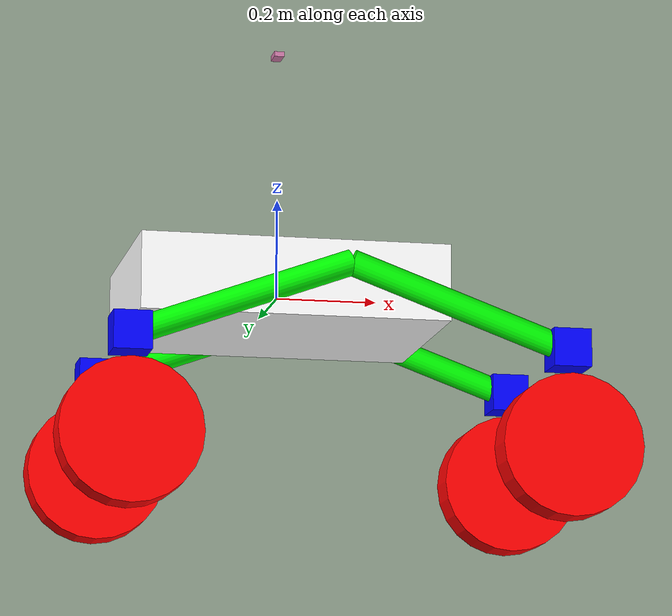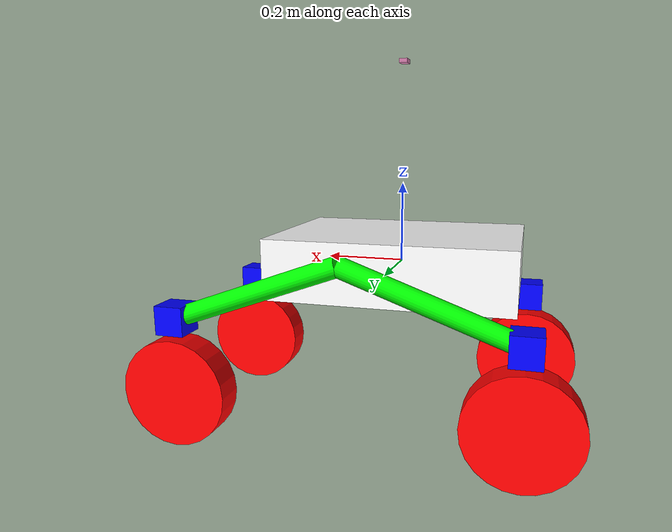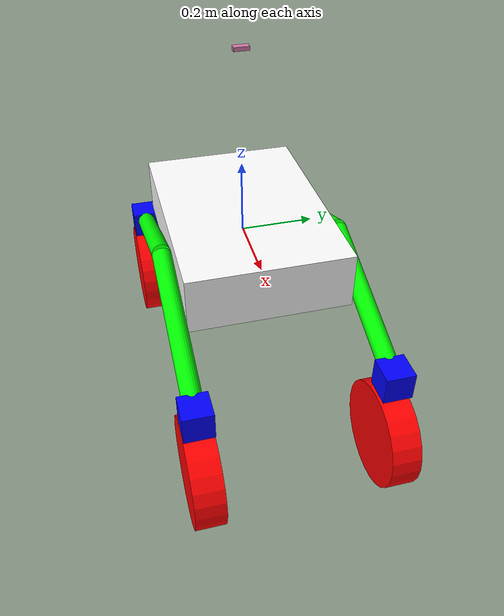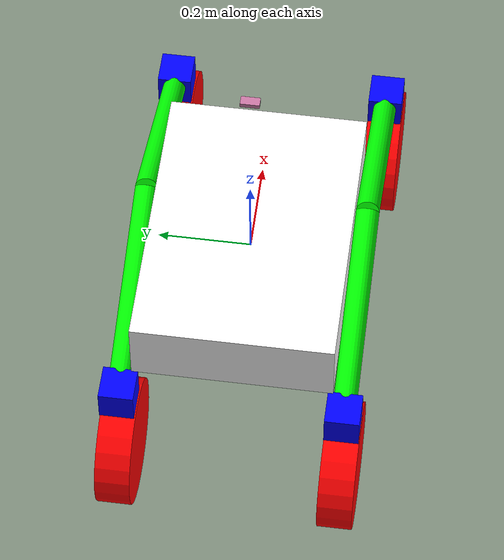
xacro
<?xml version="1.0"?>
<robot name="rover" xmlns:xacro="http://ros.org/wiki/xacro">

  <xacro:include filename="$(find rover_description)/urdf/include/robot_parts/chassis.xacro" />
  <xacro:include filename="$(find rover_description)/urdf/include/robot_parts/legs.xacro" />
  <xacro:include filename="$(find rover_description)/urdf/include/robot_parts/swerves.xacro" />
  <xacro:include filename="$(find rover_description)/urdf/include/robot_parts/wheels.xacro" />

  <xacro:include filename="$(find rover_description)/urdf/include/ros2_control/swerve_gazebo_ros2_control.xacro" />

  <xacro:include filename="$(find rover_description)/urdf/include/sensors/depth_camera_sensor.xacro" />
  <xacro:include filename="$(find rover_description)/urdf/include/sensors/gps_sensor.xacro" />
  <xacro:include filename="$(find rover_description)/urdf/include/sensors/imu_sensor.xacro" />

  <!--Including exact GPS so don't have to worry about localization in sim-->
  <xacro:include filename="$(find rover_description)/urdf/include/sensors/gps_exact.xacro" />

</robot>

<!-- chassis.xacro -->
<robot xmlns:xacro="http://www.ros.org/wiki/xacro">

  <xacro:property name="chassis_length" value="0.6096"/>
  <xacro:property name="chassis_width" value="0.4318"/>
  <xacro:property name="chassis_height" value="0.1524"/>

  <xacro:macro name="base" params="name">
    <link name="${name}" />
  </xacro:macro>

  <!-- Chassis Link -->
  <xacro:macro name="chassis" params="name parent">
    <link name="${name}">
      <inertial>
        <mass value="50"/>
        <origin xyz="0 0 -0.3"/>
        <inertia ixx="0.8736541668" ixy="0" ixz="0" iyy="1.645158" iyz="0" izz="2.325264166" />
      </inertial>
      <visual>
        <origin xyz="0 0 0" />
        <geometry>
          <box size="${chassis_length} ${chassis_width} ${chassis_height}"/>
        </geometry>
        <material name="white">
          <color rgba="1.0 1.0 1.0 1"/>
        </material>
      </visual>
      <collision>
        <origin xyz="0 0 0"/>
        <geometry>
          <box size="${chassis_length} ${chassis_width} ${chassis_height}"/>
        </geometry>
      </collision>
    </link>

    <joint name="body_joint" type="fixed">
      <parent link="${parent}" />
      <child link="${name}" />
      <origin xyz="0 0 0" />
    </joint>
  </xacro:macro>

  <!-- Instantiate Chassis -->
  <xacro:base name="base_link" />
  <xacro:chassis name="chassis_link" parent="base_link" />

</robot>

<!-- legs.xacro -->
<robot xmlns:xacro="http://www.ros.org/wiki/xacro">

  <xacro:property name="leg_radius" value="0.0254"/>
  <xacro:property name="leg_length" value="0.4572"/>

  <!-- Macro for Legs -->
  <xacro:macro name="leg" params="prefix x y z roll pitch yaw">
    <link name="${prefix}_leg_link">
      <inertial>
        <mass value="0.5"/>
        <origin xyz="0 0 0"/>
        <inertia ixx="0.008790305" ixy="0" ixz="0" iyy="0.008790305" iyz="0" izz="0.00016129"/>
      </inertial>
      <visual>
        <origin xyz="0 0 0"/>
        <geometry>
          <cylinder radius="${leg_radius}" length="${leg_length}"/>
        </geometry>
        <material name="green">
          <color rgba="0.0 1.0 0.0 1"/>
        </material>
      </visual>
      <collision>
        <origin xyz="0 0 0"/>
        <geometry>
          <cylinder radius="${leg_radius}" length="${leg_length}"/>
        </geometry>
      </collision>
    </link>
    <joint name="${prefix}_leg_joint" type="fixed">
      <parent link="chassis_link"/>
      <child link="${prefix}_leg_link"/>
      <origin xyz="${x} ${y} ${z}" rpy="${roll} ${pitch} ${yaw}"/>
    </joint>
  </xacro:macro>

  <!-- Instantiate Legs -->
  <xacro:leg prefix = "front_right" x="0.3164" y="-0.2413" z="-0.0529" roll="0" pitch="-1.22173" yaw="0"/>
  <xacro:leg prefix = "front_left" x="0.3164" y="0.2413" z="-0.0529" roll="0" pitch="-1.22173" yaw="0"/>
  <xacro:leg prefix = "rear_right" x="-0.1132" y="-0.2413" z="-0.0529" roll="0" pitch="1.22173" yaw="0"/>
  <xacro:leg prefix = "rear_left" x="-0.1132" y="0.2413" z="-0.0529" roll="0" pitch="1.22173" yaw="0"/>

</robot>

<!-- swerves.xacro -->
<robot xmlns:xacro="http://www.ros.org/wiki/xacro">

  <xacro:property name="swerve_z_off" value="-0.2286"/>

  <!-- Macro for Swerve Modules -->
  <xacro:macro name="swerve" params="prefix x y z roll pitch yaw">
    <link name="${prefix}_steering_link">
      <inertial>
        <mass value="1"/>
        <origin xyz="${x} ${y} ${z}"/>
        <inertia ixx="0.0009375" ixy="0" ixz="0" iyy="0.0009375" iyz="0" izz="0.0009375"/>
      </inertial>
      <visual>
        <origin xyz="0 0 0"/>
        <geometry>
          <box size="0.075 0.075 0.075"/>
        </geometry>
        <material name="blue">
          <color rgba="0.0 0.0 1.0 1"/>
        </material>
      </visual>
      <collision>
        <origin xyz="0 0 0"/>
        <geometry>
          <box size="0.075 0.075 0.075"/>
        </geometry>
      </collision>
    </link>

    <joint name="steering_${prefix}_joint" type="revolute">
      <parent link="${prefix}_leg_link"/>
      <child link="${prefix}_steering_link"/>
      <origin xyz="${x} ${y} ${z}" rpy="${roll} ${pitch} ${yaw}"/>
      <axis xyz="0 0 1"/>
      <limit lower="-2.1" upper="2.1" effort="20" velocity="6.28"/>
    </joint>
  </xacro:macro>

  <!-- Instantiate Swerve Modules -->
  <xacro:swerve prefix = "front_right" x="0" y="0" z="${swerve_z_off}" roll="0" pitch="1.22173" yaw="0"/>
  <xacro:swerve prefix = "front_left" x="0" y="0" z="${swerve_z_off}" roll="0" pitch="1.22173" yaw="0"/>
  <xacro:swerve prefix = "rear_right" x="0" y="0" z="${swerve_z_off}" roll="0" pitch="-1.22173" yaw="0"/>
  <xacro:swerve prefix = "rear_left" x="0" y="0" z="${swerve_z_off}" roll="0" pitch="-1.22173" yaw="0"/>

</robot>

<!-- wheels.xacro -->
<robot xmlns:xacro="http://www.ros.org/wiki/xacro">

  <xacro:property name="wheel_radius" value="0.1397"/>
  <xacro:property name="wheel_length" value="0.0762"/>

  <!-- Macro for Wheels -->
  <xacro:macro name="wheel" params="prefix x y">
    <link name="${prefix}_wheel_link">
      <inertial>
        <mass value="2"/>
        <origin xyz="0 0 -0.1905" rpy="-1.5707 0 0" />
        <inertia ixx="0.010726" ixy="0" ixz="0" iyy="0.019516" iyz="0" izz="0.010726"/>
      </inertial>
      <visual>
        <origin xyz="0 0 -0.1905" rpy ="-1.5707 0 0" />
        <geometry>
          <cylinder radius="${wheel_radius}" length="${wheel_length}"/>
        </geometry>
        <material name="red">
          <color rgba="1.0 0.0 0.0 1"/>
        </material>
      </visual>
      <collision>
        <origin xyz="0 0 -0.1905" rpy ="-1.5707 0 0" />
        <geometry>
          <cylinder radius="${wheel_radius}" length="${wheel_length}"/>
        </geometry>
        <surface>
            <friction>
            <ode>
                <mu>1.0</mu>
                <mu2>1.0</mu2>
            </ode>
            </friction>
            <contact>
            <ode>
                <min_depth>0.05</min_depth>
            </ode>
            </contact>
        </surface>
      </collision>
    </link>
    <joint name="wheel_${prefix}_joint" type="revolute">
      <parent link="${prefix}_steering_link"/>
      <child link="${prefix}_wheel_link"/>
      <origin xyz="0 0 0" rpy="0 0 0"/>
      <axis xyz="0 1 0"/>
      <limit effort="1000.0" velocity="27.0"/>
      <dynamics damping="0.2" friction="0.1"/>
    </joint>
  </xacro:macro>

  <!-- Instantiate Wheels -->
  <xacro:wheel prefix = "front_right" x="-0.5312" y="-0.2413"/>
  <xacro:wheel prefix = "front_left" x="-0.5312" y="0.2413"/>
  <xacro:wheel prefix = "rear_right" x="0.328" y="-0.2413"/>
  <xacro:wheel prefix = "rear_left" x="0.328" y="0.2413"/>

</robot>

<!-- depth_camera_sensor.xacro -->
<robot xmlns:xacro="http://www.ros.org/wiki/xacro">

  <link name='camera_link'>
    <visual>
      <origin xyz="0 0 0" rpy="0 0 0" />
      <geometry>
        <box size="0.02 0.04 0.01" />
      </geometry>
    </visual>
  </link>

  <joint name="camera_joint" type="fixed">
    <origin rpy="0 0 0" xyz="0.0 0.0 0.5" />
    <parent link="base_link" />
    <child link="camera_link" />
    <axis xyz="0 0 0" />
  </joint>

  <link name="camera_depth_frame"/>
  <joint name="camera_depth_joint" type="fixed">
    <origin xyz="0 0 0" rpy="${-pi/2} 0 ${-pi/2}"/>
    <parent link="camera_link"/>
    <child link="camera_depth_frame"/>
  </joint>

  <gazebo reference="camera_link">
    <sensor type="depth" name="camera">
      <update_rate>10.0</update_rate>
      <camera>

        <pose>0 0 0 0 0 0</pose>

        <horizontal_fov>1.089</horizontal_fov>
        <image>
          <width>640</width>
          <height>480</height>
          <format>R8G8B8</format>
        </image>
        <clip>
          <near>0.3</near>
          <far>20.0</far>
        </clip>
      </camera>

      <plugin name="camera_controller" filename="libgazebo_ros_camera.so">
        <frame_name>camera_depth_frame</frame_name>
      </plugin>
    </sensor>
  </gazebo>

</robot>

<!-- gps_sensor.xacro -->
<robot xmlns:xacro="http://www.ros.org/wiki/xacro">

    <link name="base_footprint" />
    <joint name="base_joint" type="fixed">
        <parent link="base_link"/>
        <child link="base_footprint" />
        <origin xyz="0 0 -0.010" rpy="0 0 0"/>
    </joint>

    <gazebo reference="base_footprint">
        <sensor name="rover_gps" type="gps">
        <always_on>true</always_on>
        <update_rate>30</update_rate>
        <pose>0 0 0 0 0 0</pose>
        <gps>
            <position_sensing>
            <horizontal>
                <noise type="gaussian">
                <mean>0.0</mean>
                <stddev>0.1</stddev>
                </noise>
            </horizontal>
            <vertical>
                <noise type="gaussian">
                <mean>0.0</mean>
                <stddev>0.1</stddev>
                </noise>
            </vertical>
            </position_sensing>
        </gps>
        <plugin name="my_gps_plugin" filename="libgazebo_ros_gps_sensor.so">
            <ros>
                <remapping>~/out:=navsatfix</remapping>
            </ros>
        </plugin>
        </sensor>
    </gazebo>

</robot>

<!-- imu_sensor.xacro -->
<robot xmlns:xacro="http://www.ros.org/wiki/xacro">

    <link name="imu_link" />

    <joint name="imu_joint" type="fixed">
        <parent link="base_link"/>
        <child link="imu_link"/>
        <origin xyz="0 0 0.01"/>
    </joint>

    <gazebo reference="imu_link">
        <sensor name="imu_sensor" type="imu">
        <plugin filename="libgazebo_ros_imu_sensor.so" name="imu_plugin">
            <ros>
                <remapping>~/out:=imu</remapping>
            </ros>
            <initial_orientation_as_reference>false</initial_orientation_as_reference>
            </plugin>
            <always_on>true</always_on>
            <update_rate>50</update_rate>
            <visualize>true</visualize>
            <imu>
                <angular_velocity>
                    <x>
                        <noise type="gaussian">
                            <mean>0.0</mean>
                            <stddev>2e-4</stddev>
                            <bias_mean>0.0000075</bias_mean>
                            <bias_stddev>0.0000008</bias_stddev>
                        </noise>
                    </x>
                    <y>
                        <noise type="gaussian">
                            <mean>0.0</mean>
                            <stddev>2e-4</stddev>
                            <bias_mean>0.0000075</bias_mean>
                            <bias_stddev>0.0000008</bias_stddev>
                        </noise>
                    </y>
                    <z>
                        <noise type="gaussian">
                            <mean>0.0</mean>
                            <stddev>2e-4</stddev>
                            <bias_mean>0.0000075</bias_mean>
                            <bias_stddev>0.0000008</bias_stddev>
                        </noise>
                    </z>
                </angular_velocity>
                <linear_acceleration>
                    <x>
                    <noise type="gaussian">
                        <mean>0.0</mean>
                        <stddev>1.7e-2</stddev>
                        <bias_mean>0.1</bias_mean>
                        <bias_stddev>0.00001</bias_stddev>
                    </noise>
                    </x>
                    <y>
                    <noise type="gaussian">
                        <mean>0.0</mean>
                        <stddev>1.7e-2</stddev>
                        <bias_mean>0.1</bias_mean>
                        <bias_stddev>0.00001</bias_stddev>
                    </noise>
                    </y>
                    <z>
                    <noise type="gaussian">
                        <mean>0.0</mean>
                        <stddev>1.7e-2</stddev>
                        <bias_mean>0.1</bias_mean>
                        <bias_stddev>0.00001</bias_stddev>
                    </noise>
                    </z>
                </linear_acceleration>
            </imu>
        </sensor>
    </gazebo>

</robot>

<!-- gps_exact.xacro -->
<robot xmlns:xacro="http://www.ros.org/wiki/xacro">

    <link name="exact_gps" />
    <joint name="gps_exact_joint" type="fixed">
        <parent link="base_link"/>
        <child link="exact_gps" />
        <origin xyz="0 0 1.0" rpy="0 0 0"/>
    </joint>

    <gazebo reference="exact_gps">
        <sensor name="localization_gps" type="gps">
        <always_on>true</always_on>
        <update_rate>30</update_rate>
        <pose>0 0 0 0 0 0</pose>
        <gps>
            <position_sensing>
            <horizontal>
                <noise type="gaussian">
                <mean>0.0</mean>
                <stddev>0.0</stddev>
                </noise>
            </horizontal>
            <vertical>
                <noise type="gaussian">
                <mean>0.0</mean>
                <stddev>0.0</stddev>
                </noise>
            </vertical>
            </position_sensing>
        </gps>
        <plugin name="exact_gps_plugin" filename="libgazebo_ros_gps_sensor.so">
            <ros>
                <remapping>~/out:=gps_exact</remapping>
            </ros>
        </plugin>
        </sensor>
    </gazebo>

</robot>
